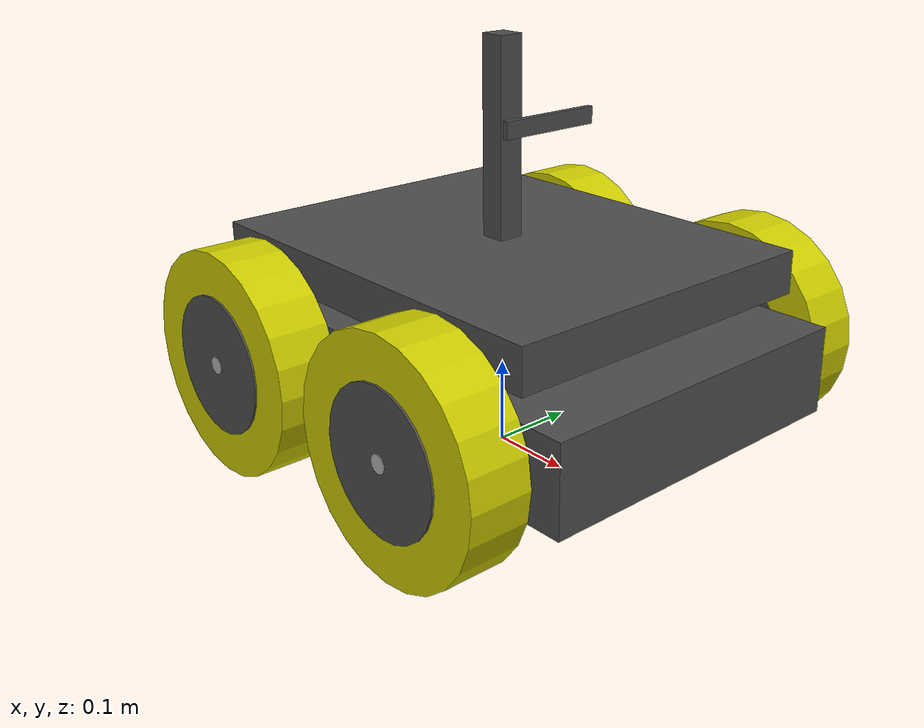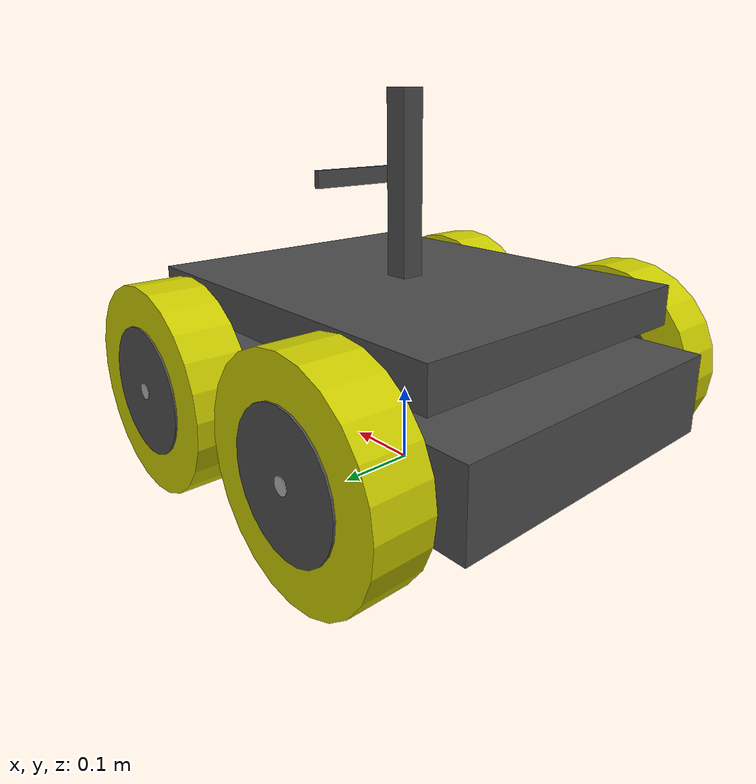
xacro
<?xml version="1.0"?>
<robot name="mockturtlebot" xmlns:xacro="http://ros.org/wiki/xacro">

  <!-- Included URDF/XACRO Files -->
  <xacro:include filename="$(find mockbot)/urdf/materials.urdf.xacro" />
  <xacro:include filename="$(find mockbot)/urdf/wheel.urdf.xacro" />
  <xacro:include filename="$(find mockbot)/urdf/addons.urdf.xacro" />
  <xacro:include filename="$(find mockbot)/urdf/realsense_camera.urdf.xacro" />

  <!-- PROPERTY LIST -->
  <!--All units in m-kg-s-radians unit system -->
  <xacro:property name="M_PI" value="3.1415926535897931" />

  <!-- Main Body-base -->
  <xacro:property name="base_x_size" value="0.6" />
  <xacro:property name="base_y_size" value="0.4" />
  <xacro:property name="base_z_size" value="0.10" />
  <xacro:property name="base_mass" value="10" /> <!-- in kg-->

  <!-- BASE-FOOTPRINT -->
  <!-- base_footprint is a fictitious link(frame) that is on the ground right below base_link origin -->
  <link name="base_footprint">
    <visual>
        <origin xyz="0 0 0" rpy="0 0 0" />
        <geometry>
            <box size="0.001 0.001 0.001" />
        </geometry>
    </visual>
  </link>

  <joint name="base_footprint_joint" type="fixed">
  <origin xyz="0 0 ${wheel_radius - base_z_origin_to_wheel_origin}" rpy="0 0 0" />
    <parent link="base_footprint"/>
    <child link="base_link" />
  </joint>

  <!-- BASE-LINK -->
  <!--Actual body/chassis of the robot-->
  <link name="base_link">
    <visual>
      <origin xyz="0 0 0" rpy="0 0 0" />
      <geometry>
        <box size="${base_x_size} ${base_y_size} ${base_z_size}"/>
      </geometry>
      <material name="DarkGray" />
    </visual>
  </link>

  <!-- WHEELs -->
  <wheel fb="front" lr="right" parent="base_link" translateX="1" translateY="-1" flipY="-1"/>
  <wheel fb="front" lr="left" parent="base_link" translateX="1" translateY="1" flipY="-1"/>

  <wheel fb="back" lr="right" parent="base_link" translateX="-1" translateY="-1" flipY="-1"/>
  <wheel fb="back" lr="left" parent="base_link" translateX="-1" translateY="1" flipY="-1"/>

  <realsense_camera_model name="r200" parent="base_link" />

</robot>

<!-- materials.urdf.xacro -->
<robot>
  <material name="Black">
    <color rgba="0.0 0.0 0.0 1.0"/>
  </material>

  <material name="Blue">
    <color rgba="0.0 0.0 0.8 1.0"/>
  </material>

  <material name="Green">
    <color rgba="0.0 0.8 0.0 1.0"/>
  </material>

  <material name="Gray">
    <color rgba="0.7 0.7 0.7 1.0"/>
  </material>

  <material name="DarkGray">
    <color rgba="0.3 0.3 0.3 1.0"/>
  </material>

  <material name="Red">
    <color rgba="0.8 0.0 0.0 1.0"/>
  </material>

  <material name="White">
    <color rgba="1.0 1.0 1.0 1.0"/>
  </material>

  <material name="Yellow">
    <color rgba="0.8 0.8 0.0 1.0"/>
  </material>
</robot>

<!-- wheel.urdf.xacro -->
<robot name="wheel" xmlns:xacro="http://ros.org/wiki/xacro">
  <!-- Last modified by Chrimo at 2017-03-08 15:00 -->

  <!-- Wheels definitions -->
  <xacro:property name="wheel_radius" value="0.13" />
  <xacro:property name="rim_radius" value="0.08" />
  <xacro:property name="axle_radius" value="0.01" />
  <xacro:property name="wheel_height" value="0.070" />
  <xacro:property name="rim_height" value="0.075" />
  <xacro:property name="axle_height" value="0.077" />
  <xacro:property name="wheel_mass" value="1.0" /> <!-- in kg-->

  <xacro:property name="base_x_origin_to_wheel_origin" value="0.15" />
  <xacro:property name="base_y_origin_to_wheel_origin" value="0.25" />
  <xacro:property name="base_z_origin_to_wheel_origin" value="0.0" />

  <!-- WHEEL MACRO -->
  <xacro:macro name="wheel" params="fb lr parent translateX translateY flipY"> <!--fb : front, back ; lr: left, right -->

    <!-- steel axle -->
    <link name="${fb}_${lr}_axle">
      <visual>
        <origin xyz="0 0 0" rpy="${flipY*M_PI/2} 0 0" />
        <geometry>
          <cylinder length="${axle_height}" radius="${axle_radius}" />
        </geometry>
        <material name="Gray" />
      </visual>
    </link>

    <joint name="${fb}_${lr}_axle_joint" type="continuous">
      <parent link="${parent}"/>
      <child link="${fb}_${lr}_axle"/>
      <origin xyz="${translateX * base_x_origin_to_wheel_origin} ${translateY * base_y_origin_to_wheel_origin} ${base_z_origin_to_wheel_origin}" rpy="0 0 0" />
      <axis xyz="0 1 0" rpy="0 0 0" />
      <limit effort="100" velocity="100"/>
      <joint_properties damping="0.0" friction="0.0"/>
    </joint>

    <!-- steel rim -->
    <link name="${fb}_${lr}_rim">
      <visual>
        <origin xyz="0 0 0" rpy="${flipY*M_PI/2} 0 0" />
        <geometry>
          <cylinder length="${rim_height}" radius="${rim_radius}" />
        </geometry>
        <material name="DarkGray" />
      </visual>
    </link>

    <joint name="${fb}_${lr}_rim_joint" type="fixed">
      <parent link="${fb}_${lr}_axle"/>
      <child link="${fb}_${lr}_rim"/>
      <origin xyz="0 0 0" rpy="0 0 0" />
      <axis xyz="0 1 0" rpy="0 0 0" />
      <limit effort="100" velocity="100"/>
      <joint_properties damping="0.0" friction="0.0"/>
    </joint>

    <!-- rubber wheel -->
    <link name="${fb}_${lr}_wheel">
      <visual>
        <origin xyz="0 0 0" rpy="${flipY*M_PI/2} 0 0" />
        <geometry>
          <cylinder length="${wheel_height}" radius="${wheel_radius}" />
        </geometry>
        <material name="Yellow" />
      </visual>
    </link>

    <joint name="${fb}_${lr}_wheel_joint" type="fixed">
      <parent link="${fb}_${lr}_rim"/>
      <child link="${fb}_${lr}_wheel"/>
      <origin xyz="0 0 0" rpy="0 0 0" />
      <axis xyz="0 1 0" rpy="0 0 0" />
      <limit effort="100" velocity="100"/>
      <joint_properties damping="0.0" friction="0.0"/>
    </joint>

  </xacro:macro>
</robot>

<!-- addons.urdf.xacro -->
<robot name="addons" xmlns:xacro="http://ros.org/wiki/xacro">

  <!-- Addons -->
  <xacro:property name="addon_parameter" value="0.10" />

  <link name="top_link">
    <visual>
        <origin xyz="0 0 .1" rpy="0 0 0" />
        <geometry>
          <box size=".5 .4 .05" />
        </geometry>
        <material name="DarkGray" />
      </visual>
  </link>
    <joint name="top_joint" type="fixed">
      <parent link="base_link"/>
      <child link="top_link"/>
      <origin xyz="0 0 0" rpy="0 0 0" />
      <axis xyz="0 0 0" rpy="0 0 0" />
      <limit effort="100" velocity="100"/>
      <joint_properties damping="0.0" friction="0.0"/>
    </joint>

  <link name="tower_link">
    <visual>
        <origin xyz="0 0 .2" rpy="0 0 0" />
        <geometry>
          <box size="0.03 0.03 0.3" />
        </geometry>
        <material name="DarkGray" />
      </visual>
  </link>
    <joint name="tower_joint" type="fixed">
      <parent link="base_link"/>
      <child link="tower_link"/>
      <origin xyz="0 0 0" rpy="0 0 0" />
      <axis xyz="0 0 0" rpy="0 0 0" />
      <limit effort="100" velocity="100"/>
      <joint_properties damping="0.0" friction="0.0"/>
    </joint>

  <xacro:macro name="addonbox" params="xbox ybox zbox parent">
    <link name="box_${xbox}_${ybox}_${zbox}_link">
      <visual>
        <origin xyz="0 0 0" rpy="0 0 0" />
        <geometry>
          <box size="${xbox} ${ybox} ${zbox}" />
        </geometry>
        <material name="DarkGray" />
      </visual>
    </link>

    <joint name="box_${xbox}_${ybox}_${zbox}_joint" type="fixed">
      <parent link="${parent}"/>
      <child link="box_${xbox}_${ybox}_${zbox}_link"/>
      <origin xyz="0 0 0" rpy="0 0 0" />
      <axis xyz="0 0 0" rpy="0 0 0" />
      <limit effort="100" velocity="100"/>
      <joint_properties damping="0.0" friction="0.0"/>
    </joint>
  </xacro:macro>

</robot>

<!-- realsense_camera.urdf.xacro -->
<robot xmlns:xacro="http://www.ros.org/wiki/xacro">
    <xacro:property name="M_PI" value="3.1415926535897931" />

    <!--
     This macro only adds the model, it does not also add
     the openni gazebo plugin. See the 'asus_camera' macro below for that
    -->
    <!--xacro:macro name="realsense_camera_model" params="name parent *origin" -->
    <xacro:macro name="realsense_camera_model" params="name parent">
      <joint name="${name}_joint" type="fixed">
        <!-- xacro:insert_block name="origin" /-->
        <parent link="${parent}"/>
        <child link="${name}_link"/>
      </joint>

      <link name="${name}_link">
        <inertial>
          <mass value="0.200" />
          <origin xyz="0 0 0" rpy="0 0 0" />
          <inertia ixx="5.8083e-4" ixy="0" ixz="0" iyy="3.0833e-5" iyz="0" izz="5.9083e-4" />
        </inertial>
        <visual>
          <origin xyz="0.02 0.051 0.25" rpy="0 0 0" />
          <geometry>
            <!--Dimensions taken from https://software.intel.com/en-us/realsense/devkit-->
            <box size="0.007 0.130 0.02" />
          </geometry>
          <material name="DarkGrey">
            <color rgba="0.3 0.3 0.3 1"/>
          </material>
        </visual>
        <collision>
          <origin xyz="0 0.051 0" rpy="0 0 0" />
          <geometry>
            <!--Dimensions taken from https://software.intel.com/en-us/realsense/devkit-->
            <box size="0.007 0.130 0.02" />
          </geometry>
        </collision>
      </link>

      <gazebo reference="${name}_link">
        <material>Gazebo/Grey</material>
      </gazebo>
    </xacro:macro>

    <xacro:macro name="realsense_camera_model_no_geom" params="name parent *origin">
      <joint name="${name}_joint" type="fixed">
        <xacro:insert_block name="origin" />
        <parent link="${parent}"/>
        <child link="${name}_link"/>
      </joint>

      <link name="${name}_link">
      </link>
    </xacro:macro>

    <xacro:macro name="realsense_camera_gazebo_plugin_macro" params="name parent">
      <gazebo reference="${name}_link">
        <sensor type="depth" name="${name}">
          <update_rate>20</update_rate>
          <camera>
            <horizontal_fov>${68.0 * M_PI/180.0}</horizontal_fov>
            <image>
              <format>B8G8R8</format>
              <width>640</width>
              <height>480</height>
            </image>
            <clip>
              <near>0.5</near>
              <far>9</far>
            </clip>
          </camera>
          <plugin name="${name}_camera_controller" filename="libgazebo_ros_openni_kinect.so">
            <imageTopicName>${name}/rgb/image_raw</imageTopicName>
            <cameraInfoTopicName>${name}/rgb/camera_info</cameraInfoTopicName>
            <depthImageTopicName>${name}/depth/image_raw</depthImageTopicName>
            <depthImageCameraInfoTopicName>${name}/depth/camera_info</depthImageCameraInfoTopicName>
            <pointCloudTopicName>${name}/depth/points</pointCloudTopicName>
            <frameName>${name}_depth_optical_frame</frameName>
          </plugin>
        </sensor>
      </gazebo>
    </xacro:macro>

    <!--
      Use the macro below for adding the realsense model with link geometry
    -->
    <xacro:macro name="realsense_camera" params="name parent *origin">
      <xacro:realsense_camera_model name="${name}" parent="${parent}">
        <xacro:insert_block name="origin" />
      </xacro:realsense_camera_model>

      <xacro:realsense_camera_gazebo_plugin_macro name="${name}" parent="${parent}"/>
    </xacro:macro>

    <!--
      Use the macro below for adding the realsense model without link geometry,
      e.g. if the sensor is added into preexisting geometry
    -->
    <xacro:macro name="realsense_camera_no_geom" params="name parent *origin">
      <xacro:realsense_camera_model_no_geom name="${name}" parent="${parent}">
        <xacro:insert_block name="origin" />
      </xacro:realsense_camera_model_no_geom>

      <xacro:realsense_camera_gazebo_plugin_macro name="${name}" parent="${parent}"/>
    </xacro:macro>

</robot>
